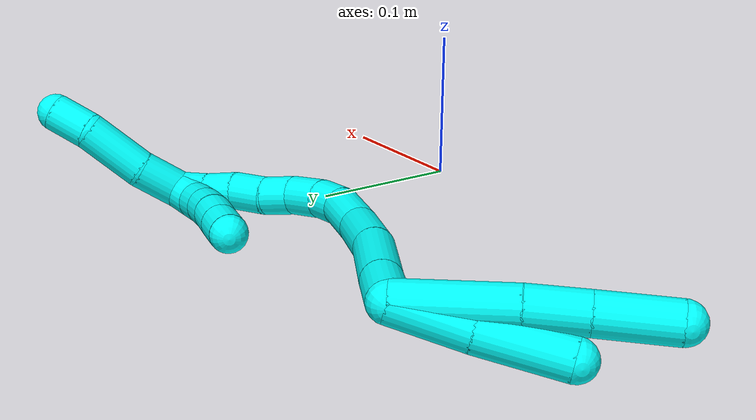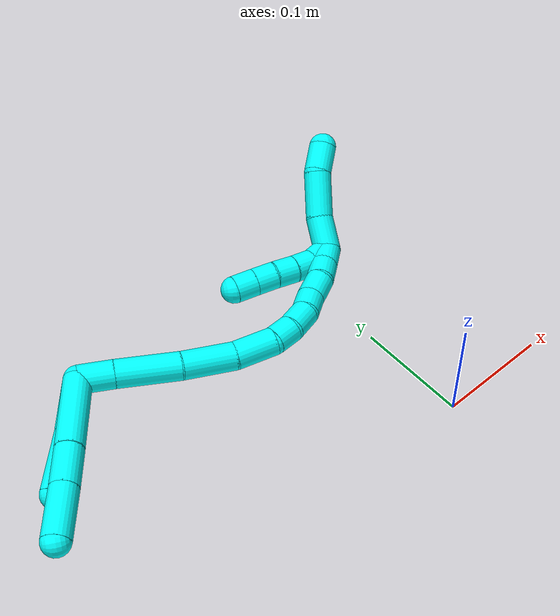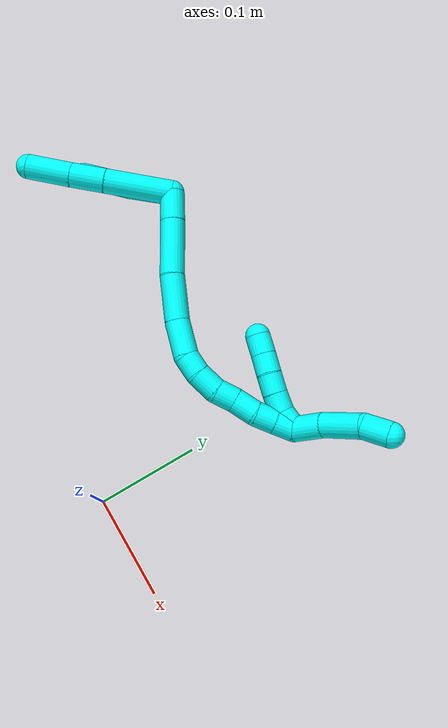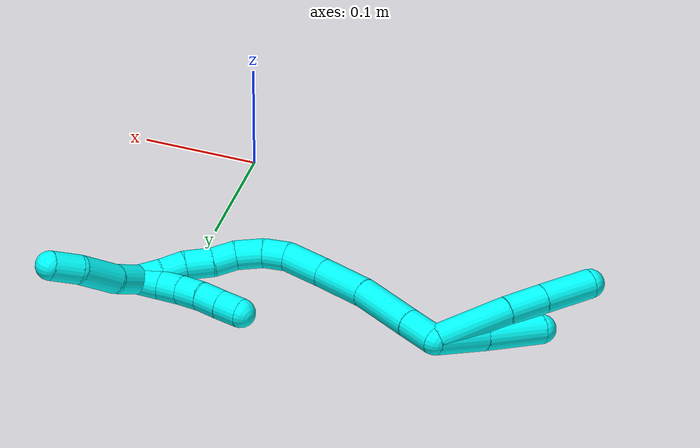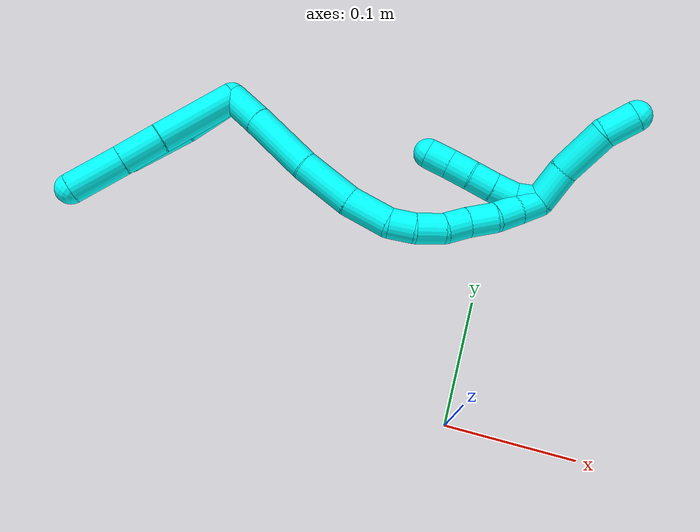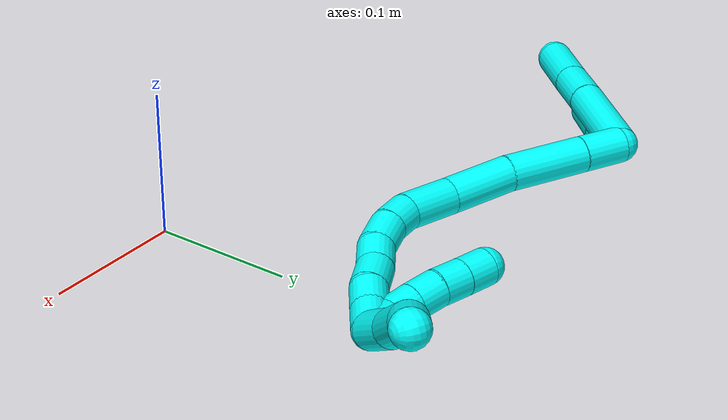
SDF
<sdf version="1.7">
 <world name="default">
  <model name="photoneo_s_sensor">
   <static>1</static>
   <pose>0 0 2 1.57079 1.57079 3.14159</pose>
   <link name="link">
    <inertial><mass>0.1</mass></inertial>
    <sensor name="sensor" type="depth">
     <update_rate>30</update_rate>
     <camera>
      <horizontal_fov>1.22</horizontal_fov>
      <image><width>1920</width><height>1200</height><format>B8G8R8</format></image>
      <clip><near>0.1</near><far>4</far></clip>
      <depth_camera><output>points</output></depth_camera>
     </camera>
     <plugin name="camera_plugin" filename="libgazebo_ros_depth_camera.so">
      <baseline>0.2</baseline>
      <alwaysOn>1</alwaysOn>
      <updateRate>0.0</updateRate>
      <cameraName>camera_ir</cameraName>
      <imageTopicName>/camera/color/image_raw</imageTopicName>
      <cameraInfoTopicName>/camera/color/camera_info</cameraInfoTopicName>
      <depthImageTopicName>/camera/depth/image_raw</depthImageTopicName>
      <depthImageCameraInfoTopicName>/camera/depth/camera_info</depthImageCameraInfoTopicName>
      <pointCloudTopicName>/camera/depth/points</pointCloudTopicName>
      <frameName>fr_optical</frameName>
      <pointCloudCutoff>0.1</pointCloudCutoff>
      <pointCloudCutoffMax>2.0</pointCloudCutoffMax>
      <distortionK1>0</distortionK1>
      <distortionK2>0</distortionK2>
      <distortionK3>0</distortionK3>
      <distortionT1>0</distortionT1>
      <distortionT2>0</distortionT2>
      <CxPrime>0</CxPrime>
      <Cx>0</Cx>
      <Cy>0</Cy>
      <focalLength>0</focalLength>
      <hackBaseline>0</hackBaseline>
     </plugin>
    </sensor>
   </link>
  </model>
  <model name="bin">
   <static>1</static>
   <link name="bottom">
    <collision name="collision-bottom">
     <pose>0 0 -0.01 0 -0 0</pose>
     <geometry><box><size>0.8 0.6 0.02</size></box></geometry>
     <surface>
      <friction><ode><mu>100</mu><mu2>100</mu2></ode></friction>
      <contact><collide_bitmask>65535</collide_bitmask></contact>
     </surface>
    </collision>
   </link>
   <link name="west_wall">
    <collision name="collision-west_wall">
     <pose>-0.41 0 0.1 0 -0 0</pose>
     <geometry><box><size>0.02 0.6 0.2</size></box></geometry>
     <surface>
      <friction><ode><mu>100</mu><mu2>100</mu2></ode></friction>
      <contact><collide_bitmask>65535</collide_bitmask></contact>
     </surface>
    </collision>
   </link>
   <link name="east_wall">
    <collision name="collision-east_wall">
     <pose>0.41 0 0.1 0 -0 0</pose>
     <geometry><box><size>0.02 0.6 0.2</size></box></geometry>
     <surface>
      <friction><ode><mu>100</mu><mu2>100</mu2></ode></friction>
      <contact><collide_bitmask>65535</collide_bitmask></contact>
     </surface>
    </collision>
   </link>
   <link name="south_wall">
    <collision name="collision-south_wall">
     <pose>0 -0.31 0.1 0 -0 0</pose>
     <geometry><box><size>0.8 0.02 0.2</size></box></geometry>
     <surface>
      <friction><ode><mu>100</mu><mu2>100</mu2></ode></friction>
      <contact><collide_bitmask>65535</collide_bitmask></contact>
     </surface>
    </collision>
   </link>
   <link name="north_wall">
    <collision name="collision-north_wall">
     <pose>0 0.31 0.1 0 -0 0</pose>
     <geometry><box><size>0.8 0.02 0.2</size></box></geometry>
     <surface>
      <friction><ode><mu>100</mu><mu2>100</mu2></ode></friction>
      <contact><collide_bitmask>65535</collide_bitmask></contact>
     </surface>
    </collision>
   </link>
  </model>
  <model name="3">
   <static>0</static>
   <link name="3">
    <collision name="collision-cylinder-e_1_2_8">
     <pose>-0.033401 0.000325 0.008189 -0.039662 -1.33019 0.031108</pose>
     <geometry><cylinder><radius>0.0125</radius><length>0.068784</length></cylinder></geometry>
     <surface>
      <friction><ode><mu>1.16</mu><mu2>1.16</mu2><slip1>0</slip1><slip2>0</slip2></ode></friction>
      <contact><ode><kp>1e+06</kp><kd>1</kd><max_vel>0</max_vel><min_depth>0.001</min_depth></ode></contact>
     </surface>
    </collision>
    <visual name="visual-cylinder-e_1_2_8">
     <pose>-0.033401 0.000325 0.008189 -0.039662 -1.33019 0.031108</pose>
     <geometry><cylinder><radius>0.0125</radius><length>0.068784</length></cylinder></geometry>
     <material><ambient>0.003922 1 0.996078 1</ambient></material>
    </visual>
    <collision name="collision-cylinder-e_2_8_9">
     <pose>-0.08378 0.001734 0.020875 -0.236601 -1.30478 0.181111</pose>
     <geometry><cylinder><radius>0.0125</radius><length>0.035192</length></cylinder></geometry>
     <surface>
      <friction><ode><mu>1.16</mu><mu2>1.16</mu2><slip1>0</slip1><slip2>0</slip2></ode></friction>
      <contact><ode><kp>1e+06</kp><kd>1</kd><max_vel>0</max_vel><min_depth>0.001</min_depth></ode></contact>
     </surface>
    </collision>
    <visual name="visual-cylinder-e_2_8_9">
     <pose>-0.08378 0.001734 0.020875 -0.236601 -1.30478 0.181111</pose>
     <geometry><cylinder><radius>0.0125</radius><length>0.035192</length></cylinder></geometry>
     <material><ambient>0.003922 1 0.996078 1</ambient></material>
    </visual>
    <collision name="collision-cylinder-e_3_9_6">
     <pose>-0.122837 0.004261 0.03169 -0.224516 -1.28531 0.168402</pose>
     <geometry><cylinder><radius>0.0125</radius><length>0.046024</length></cylinder></geometry>
     <surface>
      <friction><ode><mu>1.16</mu><mu2>1.16</mu2><slip1>0</slip1><slip2>0</slip2></ode></friction>
      <contact><ode><kp>1e+06</kp><kd>1</kd><max_vel>0</max_vel><min_depth>0.001</min_depth></ode></contact>
     </surface>
    </collision>
    <visual name="visual-cylinder-e_3_9_6">
     <pose>-0.122837 0.004261 0.03169 -0.224516 -1.28531 0.168402</pose>
     <geometry><cylinder><radius>0.0125</radius><length>0.046024</length></cylinder></geometry>
     <material><ambient>0.003922 1 0.996078 1</ambient></material>
    </visual>
    <collision name="collision-cylinder-e_1_2_10">
     <pose>-0.02119 0.006629 0.007134 -0.748784 -1.14 0.493445</pose>
     <geometry><cylinder><radius>0.0125</radius><length>0.046641</length></cylinder></geometry>
     <surface>
      <friction><ode><mu>1.16</mu><mu2>1.16</mu2><slip1>0</slip1><slip2>0</slip2></ode></friction>
      <contact><ode><kp>1e+06</kp><kd>1</kd><max_vel>0</max_vel><min_depth>0.001</min_depth></ode></contact>
     </surface>
    </collision>
    <visual name="visual-cylinder-e_1_2_10">
     <pose>-0.02119 0.006629 0.007134 -0.748784 -1.14 0.493445</pose>
     <geometry><cylinder><radius>0.0125</radius><length>0.046641</length></cylinder></geometry>
     <material><ambient>0.003922 1 0.996078 1</ambient></material>
    </visual>
    <collision name="collision-cylinder-e_2_10_5">
     <pose>-0.066585 0.018726 0.024065 -0.508926 -1.13675 0.329234</pose>
     <geometry><cylinder><radius>0.0125</radius><length>0.053359</length></cylinder></geometry>
     <surface>
      <friction><ode><mu>1.16</mu><mu2>1.16</mu2><slip1>0</slip1><slip2>0</slip2></ode></friction>
      <contact><ode><kp>1e+06</kp><kd>1</kd><max_vel>0</max_vel><min_depth>0.001</min_depth></ode></contact>
     </surface>
    </collision>
    <visual name="visual-cylinder-e_2_10_5">
     <pose>-0.066585 0.018726 0.024065 -0.508926 -1.13675 0.329234</pose>
     <geometry><cylinder><radius>0.0125</radius><length>0.053359</length></cylinder></geometry>
     <material><ambient>0.003922 1 0.996078 1</ambient></material>
    </visual>
    <collision name="collision-cylinder-e_1_2_11">
     <pose>-0.000525 4.1e-05 -0.015185 -3.13889 -0.034579 2.98575</pose>
     <geometry><cylinder><radius>0.0125</radius><length>0.030388</length></cylinder></geometry>
     <surface>
      <friction><ode><mu>1.16</mu><mu2>1.16</mu2><slip1>0</slip1><slip2>0</slip2></ode></friction>
      <contact><ode><kp>1e+06</kp><kd>1</kd><max_vel>0</max_vel><min_depth>0.001</min_depth></ode></contact>
     </surface>
    </collision>
    <visual name="visual-cylinder-e_1_2_11">
     <pose>-0.000525 4.1e-05 -0.015185 -3.13889 -0.034579 2.98575</pose>
     <geometry><cylinder><radius>0.0125</radius><length>0.030388</length></cylinder></geometry>
     <material><ambient>0.003922 1 0.996078 1</ambient></material>
    </visual>
    <collision name="collision-cylinder-e_2_11_12">
     <pose>-0.002764 0.000649 -0.058359 -3.12133 -0.061112 2.50146</pose>
     <geometry><cylinder><radius>0.0125</radius><length>0.056095</length></cylinder></geometry>
     <surface>
      <friction><ode><mu>1.16</mu><mu2>1.16</mu2><slip1>0</slip1><slip2>0</slip2></ode></friction>
      <contact><ode><kp>1e+06</kp><kd>1</kd><max_vel>0</max_vel><min_depth>0.001</min_depth></ode></contact>
     </surface>
    </collision>
    <visual name="visual-cylinder-e_2_11_12">
     <pose>-0.002764 0.000649 -0.058359 -3.12133 -0.061112 2.50146</pose>
     <geometry><cylinder><radius>0.0125</radius><length>0.056095</length></cylinder></geometry>
     <material><ambient>0.003922 1 0.996078 1</ambient></material>
    </visual>
    <collision name="collision-cylinder-e_3_12_13">
     <pose>-0.003238 0.002746 -0.109667 -3.07608 0.052964 -1.35957</pose>
     <geometry><cylinder><radius>0.0125</radius><length>0.046804</length></cylinder></geometry>
     <surface>
      <friction><ode><mu>1.16</mu><mu2>1.16</mu2><slip1>0</slip1><slip2>0</slip2></ode></friction>
      <contact><ode><kp>1e+06</kp><kd>1</kd><max_vel>0</max_vel><min_depth>0.001</min_depth></ode></contact>
     </surface>
    </collision>
    <visual name="visual-cylinder-e_3_12_13">
     <pose>-0.003238 0.002746 -0.109667 -3.07608 0.052964 -1.35957</pose>
     <geometry><cylinder><radius>0.0125</radius><length>0.046804</length></cylinder></geometry>
     <material><ambient>0.003922 1 0.996078 1</ambient></material>
    </visual>
    <collision name="collision-cylinder-e_4_13_14">
     <pose>0.001404 0.003326 -0.15093 3.08866 0.187142 2.59169</pose>
     <geometry><cylinder><radius>0.0125</radius><length>0.036577</length></cylinder></geometry>
     <surface>
      <friction><ode><mu>1.16</mu><mu2>1.16</mu2><slip1>0</slip1><slip2>0</slip2></ode></friction>
      <contact><ode><kp>1e+06</kp><kd>1</kd><max_vel>0</max_vel><min_depth>0.001</min_depth></ode></contact>
     </surface>
    </collision>
    <visual name="visual-cylinder-e_4_13_14">
     <pose>0.001404 0.003326 -0.15093 3.08866 0.187142 2.59169</pose>
     <geometry><cylinder><radius>0.0125</radius><length>0.036577</length></cylinder></geometry>
     <material><ambient>0.003922 1 0.996078 1</ambient></material>
    </visual>
    <collision name="collision-cylinder-e_5_14_15">
     <pose>0.010021 0.002395 -0.177858 -3.1393 0.525902 -3.13306</pose>
     <geometry><cylinder><radius>0.0125</radius><length>0.020775</length></cylinder></geometry>
     <surface>
      <friction><ode><mu>1.16</mu><mu2>1.16</mu2><slip1>0</slip1><slip2>0</slip2></ode></friction>
      <contact><ode><kp>1e+06</kp><kd>1</kd><max_vel>0</max_vel><min_depth>0.001</min_depth></ode></contact>
     </surface>
    </collision>
    <visual name="visual-cylinder-e_5_14_15">
     <pose>0.010021 0.002395 -0.177858 -3.1393 0.525902 -3.13306</pose>
     <geometry><cylinder><radius>0.0125</radius><length>0.020775</length></cylinder></geometry>
     <material><ambient>0.003922 1 0.996078 1</ambient></material>
    </visual>
    <collision name="collision-cylinder-e_6_15_16">
     <pose>0.023443 0.003439 -0.195432 -3.02306 0.759079 -2.84625</pose>
     <geometry><cylinder><radius>0.0125</radius><length>0.02385</length></cylinder></geometry>
     <surface>
      <friction><ode><mu>1.16</mu><mu2>1.16</mu2><slip1>0</slip1><slip2>0</slip2></ode></friction>
      <contact><ode><kp>1e+06</kp><kd>1</kd><max_vel>0</max_vel><min_depth>0.001</min_depth></ode></contact>
     </surface>
    </collision>
    <visual name="visual-cylinder-e_6_15_16">
     <pose>0.023443 0.003439 -0.195432 -3.02306 0.759079 -2.84625</pose>
     <geometry><cylinder><radius>0.0125</radius><length>0.02385</length></cylinder></geometry>
     <material><ambient>0.003922 1 0.996078 1</ambient></material>
    </visual>
    <collision name="collision-cylinder-e_7_16_17">
     <pose>0.040608 0.005762 -0.208985 -2.88545 1.05073 -2.70441</pose>
     <geometry><cylinder><radius>0.0125</radius><length>0.020645</length></cylinder></geometry>
     <surface>
      <friction><ode><mu>1.16</mu><mu2>1.16</mu2><slip1>0</slip1><slip2>0</slip2></ode></friction>
      <contact><ode><kp>1e+06</kp><kd>1</kd><max_vel>0</max_vel><min_depth>0.001</min_depth></ode></contact>
     </surface>
    </collision>
    <visual name="visual-cylinder-e_7_16_17">
     <pose>0.040608 0.005762 -0.208985 -2.88545 1.05073 -2.70441</pose>
     <geometry><cylinder><radius>0.0125</radius><length>0.020645</length></cylinder></geometry>
     <material><ambient>0.003922 1 0.996078 1</ambient></material>
    </visual>
    <collision name="collision-cylinder-e_8_17_18">
     <pose>0.059008 0.006996 -0.220996 3.13229 0.929513 3.12303</pose>
     <geometry><cylinder><radius>0.0125</radius><length>0.023567</length></cylinder></geometry>
     <surface>
      <friction><ode><mu>1.16</mu><mu2>1.16</mu2><slip1>0</slip1><slip2>0</slip2></ode></friction>
      <contact><ode><kp>1e+06</kp><kd>1</kd><max_vel>0</max_vel><min_depth>0.001</min_depth></ode></contact>
     </surface>
    </collision>
    <visual name="visual-cylinder-e_8_17_18">
     <pose>0.059008 0.006996 -0.220996 3.13229 0.929513 3.12303</pose>
     <geometry><cylinder><radius>0.0125</radius><length>0.023567</length></cylinder></geometry>
     <material><ambient>0.003922 1 0.996078 1</ambient></material>
    </visual>
    <collision name="collision-cylinder-e_9_18_19">
     <pose>0.077885 0.008185 -0.232458 -2.8646 1.11813 -2.70317</pose>
     <geometry><cylinder><radius>0.0125</radius><length>0.020983</length></cylinder></geometry>
     <surface>
      <friction><ode><mu>1.16</mu><mu2>1.16</mu2><slip1>0</slip1><slip2>0</slip2></ode></friction>
      <contact><ode><kp>1e+06</kp><kd>1</kd><max_vel>0</max_vel><min_depth>0.001</min_depth></ode></contact>
     </surface>
    </collision>
    <visual name="visual-cylinder-e_9_18_19">
     <pose>0.077885 0.008185 -0.232458 -2.8646 1.11813 -2.70317</pose>
     <geometry><cylinder><radius>0.0125</radius><length>0.020983</length></cylinder></geometry>
     <material><ambient>0.003922 1 0.996078 1</ambient></material>
    </visual>
    <collision name="collision-cylinder-e_10_19_1">
     <pose>0.09653 0.009642 -0.241152 -3.0943 1.13538 -3.06745</pose>
     <geometry><cylinder><radius>0.0125</radius><length>0.020317</length></cylinder></geometry>
     <surface>
      <friction><ode><mu>1.16</mu><mu2>1.16</mu2><slip1>0</slip1><slip2>0</slip2></ode></friction>
      <contact><ode><kp>1e+06</kp><kd>1</kd><max_vel>0</max_vel><min_depth>0.001</min_depth></ode></contact>
     </surface>
    </collision>
    <visual name="visual-cylinder-e_10_19_1">
     <pose>0.09653 0.009642 -0.241152 -3.0943 1.13538 -3.06745</pose>
     <geometry><cylinder><radius>0.0125</radius><length>0.020317</length></cylinder></geometry>
     <material><ambient>0.003922 1 0.996078 1</ambient></material>
    </visual>
    <collision name="collision-cylinder-e_1_1_20">
     <pose>0.118822 0.001434 -0.245 1.51943 0.998758 0.956154</pose>
     <geometry><cylinder><radius>0.0125</radius><length>0.031115</length></cylinder></geometry>
     <surface>
      <friction><ode><mu>1.16</mu><mu2>1.16</mu2><slip1>0</slip1><slip2>0</slip2></ode></friction>
      <contact><ode><kp>1e+06</kp><kd>1</kd><max_vel>0</max_vel><min_depth>0.001</min_depth></ode></contact>
     </surface>
    </collision>
    <visual name="visual-cylinder-e_1_1_20">
     <pose>0.118822 0.001434 -0.245 1.51943 0.998758 0.956154</pose>
     <geometry><cylinder><radius>0.0125</radius><length>0.031115</length></cylinder></geometry>
     <material><ambient>0.003922 1 0.996078 1</ambient></material>
    </visual>
    <collision name="collision-cylinder-e_2_20_21">
     <pose>0.148119 -0.020102 -0.247516 1.79182 0.878302 1.06162</pose>
     <geometry><cylinder><radius>0.0125</radius><length>0.04214</length></cylinder></geometry>
     <surface>
      <friction><ode><mu>1.16</mu><mu2>1.16</mu2><slip1>0</slip1><slip2>0</slip2></ode></friction>
      <contact><ode><kp>1e+06</kp><kd>1</kd><max_vel>0</max_vel><min_depth>0.001</min_depth></ode></contact>
     </surface>
    </collision>
    <visual name="visual-cylinder-e_2_20_21">
     <pose>0.148119 -0.020102 -0.247516 1.79182 0.878302 1.06162</pose>
     <geometry><cylinder><radius>0.0125</radius><length>0.04214</length></cylinder></geometry>
     <material><ambient>0.003922 1 0.996078 1</ambient></material>
    </visual>
    <collision name="collision-cylinder-e_3_21_4">
     <pose>0.175253 -0.038893 -0.255714 2.31792 0.955063 1.73945</pose>
     <geometry><cylinder><radius>0.0125</radius><length>0.026745</length></cylinder></geometry>
     <surface>
      <friction><ode><mu>1.16</mu><mu2>1.16</mu2><slip1>0</slip1><slip2>0</slip2></ode></friction>
      <contact><ode><kp>1e+06</kp><kd>1</kd><max_vel>0</max_vel><min_depth>0.001</min_depth></ode></contact>
     </surface>
    </collision>
    <visual name="visual-cylinder-e_3_21_4">
     <pose>0.175253 -0.038893 -0.255714 2.31792 0.955063 1.73945</pose>
     <geometry><cylinder><radius>0.0125</radius><length>0.026745</length></cylinder></geometry>
     <material><ambient>0.003922 1 0.996078 1</ambient></material>
    </visual>
    <collision name="collision-cylinder-e_1_1_22">
     <pose>0.100708 0.011101 -0.236883 -0.14591 -0.527426 0.039461</pose>
     <geometry><cylinder><radius>0.0125</radius><length>0.02</length></cylinder></geometry>
     <surface>
      <friction><ode><mu>1.16</mu><mu2>1.16</mu2><slip1>0</slip1><slip2>0</slip2></ode></friction>
      <contact><ode><kp>1e+06</kp><kd>1</kd><max_vel>0</max_vel><min_depth>0.001</min_depth></ode></contact>
     </surface>
    </collision>
    <visual name="visual-cylinder-e_1_1_22">
     <pose>0.100708 0.011101 -0.236883 -0.14591 -0.527426 0.039461</pose>
     <geometry><cylinder><radius>0.0125</radius><length>0.02</length></cylinder></geometry>
     <material><ambient>0.003922 1 0.996078 1</ambient></material>
    </visual>
    <collision name="collision-cylinder-e_2_22_23">
     <pose>0.092775 0.011472 -0.218804 0.092644 -0.294221 -0.013738</pose>
     <geometry><cylinder><radius>0.0125</radius><length>0.02</length></cylinder></geometry>
     <surface>
      <friction><ode><mu>1.16</mu><mu2>1.16</mu2><slip1>0</slip1><slip2>0</slip2></ode></friction>
      <contact><ode><kp>1e+06</kp><kd>1</kd><max_vel>0</max_vel><min_depth>0.001</min_depth></ode></contact>
     </surface>
    </collision>
    <visual name="visual-cylinder-e_2_22_23">
     <pose>0.092775 0.011472 -0.218804 0.092644 -0.294221 -0.013738</pose>
     <geometry><cylinder><radius>0.0125</radius><length>0.02</length></cylinder></geometry>
     <material><ambient>0.003922 1 0.996078 1</ambient></material>
    </visual>
    <collision name="collision-cylinder-e_3_23_24">
     <pose>0.087606 0.00981 -0.199567 0.079865 -0.228939 -0.009187</pose>
     <geometry><cylinder><radius>0.0125</radius><length>0.02</length></cylinder></geometry>
     <surface>
      <friction><ode><mu>1.16</mu><mu2>1.16</mu2><slip1>0</slip1><slip2>0</slip2></ode></friction>
      <contact><ode><kp>1e+06</kp><kd>1</kd><max_vel>0</max_vel><min_depth>0.001</min_depth></ode></contact>
     </surface>
    </collision>
    <visual name="visual-cylinder-e_3_23_24">
     <pose>0.087606 0.00981 -0.199567 0.079865 -0.228939 -0.009187</pose>
     <geometry><cylinder><radius>0.0125</radius><length>0.02</length></cylinder></geometry>
     <material><ambient>0.003922 1 0.996078 1</ambient></material>
    </visual>
    <collision name="collision-cylinder-e_4_24_25">
     <pose>0.08338 0.009285 -0.180055 -0.025678 -0.196869 0.002536</pose>
     <geometry><cylinder><radius>0.0125</radius><length>0.02</length></cylinder></geometry>
     <surface>
      <friction><ode><mu>1.16</mu><mu2>1.16</mu2><slip1>0</slip1><slip2>0</slip2></ode></friction>
      <contact><ode><kp>1e+06</kp><kd>1</kd><max_vel>0</max_vel><min_depth>0.001</min_depth></ode></contact>
     </surface>
    </collision>
    <visual name="visual-cylinder-e_4_24_25">
     <pose>0.08338 0.009285 -0.180055 -0.025678 -0.196869 0.002536</pose>
     <geometry><cylinder><radius>0.0125</radius><length>0.02</length></cylinder></geometry>
     <material><ambient>0.003922 1 0.996078 1</ambient></material>
    </visual>
    <collision name="collision-cylinder-e_5_25_3">
     <pose>0.07926 0.00974 -0.160491 -0.020872 -0.218146 0.002286</pose>
     <geometry><cylinder><radius>0.0125</radius><length>0.02</length></cylinder></geometry>
     <surface>
      <friction><ode><mu>1.16</mu><mu2>1.16</mu2><slip1>0</slip1><slip2>0</slip2></ode></friction>
      <contact><ode><kp>1e+06</kp><kd>1</kd><max_vel>0</max_vel><min_depth>0.001</min_depth></ode></contact>
     </surface>
    </collision>
    <visual name="visual-cylinder-e_5_25_3">
     <pose>0.07926 0.00974 -0.160491 -0.020872 -0.218146 0.002286</pose>
     <geometry><cylinder><radius>0.0125</radius><length>0.02</length></cylinder></geometry>
     <material><ambient>0.003922 1 0.996078 1</ambient></material>
    </visual>
    <collision name="collision-sphere-3">
     <pose>0.077096 0.009944 -0.15073 0 -0 0</pose>
     <geometry><sphere><radius>0.0125</radius></sphere></geometry>
     <surface>
      <friction><ode><mu>1.16</mu><mu2>1.16</mu2><slip1>0</slip1><slip2>0</slip2></ode></friction>
      <contact><ode><kp>1e+06</kp><kd>1</kd><max_vel>0</max_vel><min_depth>0.001</min_depth></ode></contact>
     </surface>
    </collision>
    <visual name="visual-sphere-3">
     <pose>0.077096 0.009944 -0.15073 0 -0 0</pose>
     <geometry><sphere><radius>0.0125</radius></sphere></geometry>
     <material><ambient>0.003922 1 0.996078 1</ambient></material>
    </visual>
    <collision name="collision-sphere-25">
     <pose>0.081424 0.009537 -0.170252 0 -0 0</pose>
     <geometry><sphere><radius>0.0125</radius></sphere></geometry>
     <surface>
      <friction><ode><mu>1.16</mu><mu2>1.16</mu2><slip1>0</slip1><slip2>0</slip2></ode></friction>
      <contact><ode><kp>1e+06</kp><kd>1</kd><max_vel>0</max_vel><min_depth>0.001</min_depth></ode></contact>
     </surface>
    </collision>
    <visual name="visual-sphere-25">
     <pose>0.081424 0.009537 -0.170252 0 -0 0</pose>
     <geometry><sphere><radius>0.0125</radius></sphere></geometry>
     <material><ambient>0.003922 1 0.996078 1</ambient></material>
    </visual>
    <collision name="collision-sphere-24">
     <pose>0.085336 0.009033 -0.189859 0 -0 0</pose>
     <geometry><sphere><radius>0.0125</radius></sphere></geometry>
     <surface>
      <friction><ode><mu>1.16</mu><mu2>1.16</mu2><slip1>0</slip1><slip2>0</slip2></ode></friction>
      <contact><ode><kp>1e+06</kp><kd>1</kd><max_vel>0</max_vel><min_depth>0.001</min_depth></ode></contact>
     </surface>
    </collision>
    <visual name="visual-sphere-24">
     <pose>0.085336 0.009033 -0.189859 0 -0 0</pose>
     <geometry><sphere><radius>0.0125</radius></sphere></geometry>
     <material><ambient>0.003922 1 0.996078 1</ambient></material>
    </visual>
    <collision name="collision-sphere-23">
     <pose>0.089875 0.010587 -0.209275 0 -0 0</pose>
     <geometry><sphere><radius>0.0125</radius></sphere></geometry>
     <surface>
      <friction><ode><mu>1.16</mu><mu2>1.16</mu2><slip1>0</slip1><slip2>0</slip2></ode></friction>
      <contact><ode><kp>1e+06</kp><kd>1</kd><max_vel>0</max_vel><min_depth>0.001</min_depth></ode></contact>
     </surface>
    </collision>
    <visual name="visual-sphere-23">
     <pose>0.089875 0.010587 -0.209275 0 -0 0</pose>
     <geometry><sphere><radius>0.0125</radius></sphere></geometry>
     <material><ambient>0.003922 1 0.996078 1</ambient></material>
    </visual>
    <collision name="collision-sphere-22">
     <pose>0.095675 0.012358 -0.228334 0 -0 0</pose>
     <geometry><sphere><radius>0.0125</radius></sphere></geometry>
     <surface>
      <friction><ode><mu>1.16</mu><mu2>1.16</mu2><slip1>0</slip1><slip2>0</slip2></ode></friction>
      <contact><ode><kp>1e+06</kp><kd>1</kd><max_vel>0</max_vel><min_depth>0.001</min_depth></ode></contact>
     </surface>
    </collision>
    <visual name="visual-sphere-22">
     <pose>0.095675 0.012358 -0.228334 0 -0 0</pose>
     <geometry><sphere><radius>0.0125</radius></sphere></geometry>
     <material><ambient>0.003922 1 0.996078 1</ambient></material>
    </visual>
    <collision name="collision-sphere-4">
     <pose>0.186169 -0.044559 -0.260962 0 -0 0</pose>
     <geometry><sphere><radius>0.0125</radius></sphere></geometry>
     <surface>
      <friction><ode><mu>1.16</mu><mu2>1.16</mu2><slip1>0</slip1><slip2>0</slip2></ode></friction>
      <contact><ode><kp>1e+06</kp><kd>1</kd><max_vel>0</max_vel><min_depth>0.001</min_depth></ode></contact>
     </surface>
    </collision>
    <visual name="visual-sphere-4">
     <pose>0.186169 -0.044559 -0.260962 0 -0 0</pose>
     <geometry><sphere><radius>0.0125</radius></sphere></geometry>
     <material><ambient>0.003922 1 0.996078 1</ambient></material>
    </visual>
    <collision name="collision-sphere-21">
     <pose>0.164336 -0.033227 -0.250465 0 -0 0</pose>
     <geometry><sphere><radius>0.0125</radius></sphere></geometry>
     <surface>
      <friction><ode><mu>1.16</mu><mu2>1.16</mu2><slip1>0</slip1><slip2>0</slip2></ode></friction>
      <contact><ode><kp>1e+06</kp><kd>1</kd><max_vel>0</max_vel><min_depth>0.001</min_depth></ode></contact>
     </surface>
    </collision>
    <visual name="visual-sphere-21">
     <pose>0.164336 -0.033227 -0.250465 0 -0 0</pose>
     <geometry><sphere><radius>0.0125</radius></sphere></geometry>
     <material><ambient>0.003922 1 0.996078 1</ambient></material>
    </visual>
    <collision name="collision-sphere-20">
     <pose>0.131903 -0.006977 -0.244567 0 -0 0</pose>
     <geometry><sphere><radius>0.0125</radius></sphere></geometry>
     <surface>
      <friction><ode><mu>1.16</mu><mu2>1.16</mu2><slip1>0</slip1><slip2>0</slip2></ode></friction>
      <contact><ode><kp>1e+06</kp><kd>1</kd><max_vel>0</max_vel><min_depth>0.001</min_depth></ode></contact>
     </surface>
    </collision>
    <visual name="visual-sphere-20">
     <pose>0.131903 -0.006977 -0.244567 0 -0 0</pose>
     <geometry><sphere><radius>0.0125</radius></sphere></geometry>
     <material><ambient>0.003922 1 0.996078 1</ambient></material>
    </visual>
    <collision name="collision-sphere-5">
     <pose>-0.090791 0.024193 0.033863 0 -0 0</pose>
     <geometry><sphere><radius>0.0125</radius></sphere></geometry>
     <surface>
      <friction><ode><mu>1.16</mu><mu2>1.16</mu2><slip1>0</slip1><slip2>0</slip2></ode></friction>
      <contact><ode><kp>1e+06</kp><kd>1</kd><max_vel>0</max_vel><min_depth>0.001</min_depth></ode></contact>
     </surface>
    </collision>
    <visual name="visual-sphere-5">
     <pose>-0.090791 0.024193 0.033863 0 -0 0</pose>
     <geometry><sphere><radius>0.0125</radius></sphere></geometry>
     <material><ambient>0.003922 1 0.996078 1</ambient></material>
    </visual>
    <collision name="collision-sphere-10">
     <pose>-0.04238 0.013259 0.014267 0 -0 0</pose>
     <geometry><sphere><radius>0.0125</radius></sphere></geometry>
     <surface>
      <friction><ode><mu>1.16</mu><mu2>1.16</mu2><slip1>0</slip1><slip2>0</slip2></ode></friction>
      <contact><ode><kp>1e+06</kp><kd>1</kd><max_vel>0</max_vel><min_depth>0.001</min_depth></ode></contact>
     </surface>
    </collision>
    <visual name="visual-sphere-10">
     <pose>-0.04238 0.013259 0.014267 0 -0 0</pose>
     <geometry><sphere><radius>0.0125</radius></sphere></geometry>
     <material><ambient>0.003922 1 0.996078 1</ambient></material>
    </visual>
    <collision name="collision-sphere-6">
     <pose>-0.144918 0.005704 0.038008 0 -0 0</pose>
     <geometry><sphere><radius>0.0125</radius></sphere></geometry>
     <surface>
      <friction><ode><mu>1.16</mu><mu2>1.16</mu2><slip1>0</slip1><slip2>0</slip2></ode></friction>
      <contact><ode><kp>1e+06</kp><kd>1</kd><max_vel>0</max_vel><min_depth>0.001</min_depth></ode></contact>
     </surface>
    </collision>
    <visual name="visual-sphere-6">
     <pose>-0.144918 0.005704 0.038008 0 -0 0</pose>
     <geometry><sphere><radius>0.0125</radius></sphere></geometry>
     <material><ambient>0.003922 1 0.996078 1</ambient></material>
    </visual>
    <collision name="collision-sphere-9">
     <pose>-0.100757 0.002818 0.025371 0 -0 0</pose>
     <geometry><sphere><radius>0.0125</radius></sphere></geometry>
     <surface>
      <friction><ode><mu>1.16</mu><mu2>1.16</mu2><slip1>0</slip1><slip2>0</slip2></ode></friction>
      <contact><ode><kp>1e+06</kp><kd>1</kd><max_vel>0</max_vel><min_depth>0.001</min_depth></ode></contact>
     </surface>
    </collision>
    <visual name="visual-sphere-9">
     <pose>-0.100757 0.002818 0.025371 0 -0 0</pose>
     <geometry><sphere><radius>0.0125</radius></sphere></geometry>
     <material><ambient>0.003922 1 0.996078 1</ambient></material>
    </visual>
    <collision name="collision-sphere-2">
     <geometry><sphere><radius>0.0125</radius></sphere></geometry>
     <surface>
      <friction><ode><mu>1.16</mu><mu2>1.16</mu2><slip1>0</slip1><slip2>0</slip2></ode></friction>
      <contact><ode><kp>1e+06</kp><kd>1</kd><max_vel>0</max_vel><min_depth>0.001</min_depth></ode></contact>
     </surface>
    </collision>
    <visual name="visual-sphere-2">
     <geometry><sphere><radius>0.0125</radius></sphere></geometry>
     <material><ambient>0.003922 1 0.996078 1</ambient></material>
    </visual>
    <collision name="collision-sphere-19">
     <pose>0.08732 0.00944 -0.236872 0 -0 0</pose>
     <geometry><sphere><radius>0.0125</radius></sphere></geometry>
     <surface>
      <friction><ode><mu>1.16</mu><mu2>1.16</mu2><slip1>0</slip1><slip2>0</slip2></ode></friction>
      <contact><ode><kp>1e+06</kp><kd>1</kd><max_vel>0</max_vel><min_depth>0.001</min_depth></ode></contact>
     </surface>
    </collision>
    <visual name="visual-sphere-19">
     <pose>0.08732 0.00944 -0.236872 0 -0 0</pose>
     <geometry><sphere><radius>0.0125</radius></sphere></geometry>
     <material><ambient>0.003922 1 0.996078 1</ambient></material>
    </visual>
    <collision name="collision-sphere-8">
     <pose>-0.066803 0.00065 0.016378 0 -0 0</pose>
     <geometry><sphere><radius>0.0125</radius></sphere></geometry>
     <surface>
      <friction><ode><mu>1.16</mu><mu2>1.16</mu2><slip1>0</slip1><slip2>0</slip2></ode></friction>
      <contact><ode><kp>1e+06</kp><kd>1</kd><max_vel>0</max_vel><min_depth>0.001</min_depth></ode></contact>
     </surface>
    </collision>
    <visual name="visual-sphere-8">
     <pose>-0.066803 0.00065 0.016378 0 -0 0</pose>
     <geometry><sphere><radius>0.0125</radius></sphere></geometry>
     <material><ambient>0.003922 1 0.996078 1</ambient></material>
    </visual>
    <collision name="collision-sphere-11">
     <pose>-0.001051 8.2e-05 -0.03037 0 -0 0</pose>
     <geometry><sphere><radius>0.0125</radius></sphere></geometry>
     <surface>
      <friction><ode><mu>1.16</mu><mu2>1.16</mu2><slip1>0</slip1><slip2>0</slip2></ode></friction>
      <contact><ode><kp>1e+06</kp><kd>1</kd><max_vel>0</max_vel><min_depth>0.001</min_depth></ode></contact>
     </surface>
    </collision>
    <visual name="visual-sphere-11">
     <pose>-0.001051 8.2e-05 -0.03037 0 -0 0</pose>
     <geometry><sphere><radius>0.0125</radius></sphere></geometry>
     <material><ambient>0.003922 1 0.996078 1</ambient></material>
    </visual>
    <collision name="collision-sphere-12">
     <pose>-0.004477 0.001216 -0.086348 0 -0 0</pose>
     <geometry><sphere><radius>0.0125</radius></sphere></geometry>
     <surface>
      <friction><ode><mu>1.16</mu><mu2>1.16</mu2><slip1>0</slip1><slip2>0</slip2></ode></friction>
      <contact><ode><kp>1e+06</kp><kd>1</kd><max_vel>0</max_vel><min_depth>0.001</min_depth></ode></contact>
     </surface>
    </collision>
    <visual name="visual-sphere-12">
     <pose>-0.004477 0.001216 -0.086348 0 -0 0</pose>
     <geometry><sphere><radius>0.0125</radius></sphere></geometry>
     <material><ambient>0.003922 1 0.996078 1</ambient></material>
    </visual>
    <collision name="collision-sphere-13">
     <pose>-0.001999 0.004276 -0.132986 0 -0 0</pose>
     <geometry><sphere><radius>0.0125</radius></sphere></geometry>
     <surface>
      <friction><ode><mu>1.16</mu><mu2>1.16</mu2><slip1>0</slip1><slip2>0</slip2></ode></friction>
      <contact><ode><kp>1e+06</kp><kd>1</kd><max_vel>0</max_vel><min_depth>0.001</min_depth></ode></contact>
     </surface>
    </collision>
    <visual name="visual-sphere-13">
     <pose>-0.001999 0.004276 -0.132986 0 -0 0</pose>
     <geometry><sphere><radius>0.0125</radius></sphere></geometry>
     <material><ambient>0.003922 1 0.996078 1</ambient></material>
    </visual>
    <collision name="collision-sphere-14">
     <pose>0.004807 0.002375 -0.168874 0 -0 0</pose>
     <geometry><sphere><radius>0.0125</radius></sphere></geometry>
     <surface>
      <friction><ode><mu>1.16</mu><mu2>1.16</mu2><slip1>0</slip1><slip2>0</slip2></ode></friction>
      <contact><ode><kp>1e+06</kp><kd>1</kd><max_vel>0</max_vel><min_depth>0.001</min_depth></ode></contact>
     </surface>
    </collision>
    <visual name="visual-sphere-14">
     <pose>0.004807 0.002375 -0.168874 0 -0 0</pose>
     <geometry><sphere><radius>0.0125</radius></sphere></geometry>
     <material><ambient>0.003922 1 0.996078 1</ambient></material>
    </visual>
    <collision name="collision-sphere-15">
     <pose>0.015235 0.002416 -0.186842 0 -0 0</pose>
     <geometry><sphere><radius>0.0125</radius></sphere></geometry>
     <surface>
      <friction><ode><mu>1.16</mu><mu2>1.16</mu2><slip1>0</slip1><slip2>0</slip2></ode></friction>
      <contact><ode><kp>1e+06</kp><kd>1</kd><max_vel>0</max_vel><min_depth>0.001</min_depth></ode></contact>
     </surface>
    </collision>
    <visual name="visual-sphere-15">
     <pose>0.015235 0.002416 -0.186842 0 -0 0</pose>
     <geometry><sphere><radius>0.0125</radius></sphere></geometry>
     <material><ambient>0.003922 1 0.996078 1</ambient></material>
    </visual>
    <collision name="collision-sphere-16">
     <pose>0.03165 0.004462 -0.204023 0 -0 0</pose>
     <geometry><sphere><radius>0.0125</radius></sphere></geometry>
     <surface>
      <friction><ode><mu>1.16</mu><mu2>1.16</mu2><slip1>0</slip1><slip2>0</slip2></ode></friction>
      <contact><ode><kp>1e+06</kp><kd>1</kd><max_vel>0</max_vel><min_depth>0.001</min_depth></ode></contact>
     </surface>
    </collision>
    <visual name="visual-sphere-16">
     <pose>0.03165 0.004462 -0.204023 0 -0 0</pose>
     <geometry><sphere><radius>0.0125</radius></sphere></geometry>
     <material><ambient>0.003922 1 0.996078 1</ambient></material>
    </visual>
    <collision name="collision-sphere-17">
     <pose>0.049566 0.007061 -0.213947 0 -0 0</pose>
     <geometry><sphere><radius>0.0125</radius></sphere></geometry>
     <surface>
      <friction><ode><mu>1.16</mu><mu2>1.16</mu2><slip1>0</slip1><slip2>0</slip2></ode></friction>
      <contact><ode><kp>1e+06</kp><kd>1</kd><max_vel>0</max_vel><min_depth>0.001</min_depth></ode></contact>
     </surface>
    </collision>
    <visual name="visual-sphere-17">
     <pose>0.049566 0.007061 -0.213947 0 -0 0</pose>
     <geometry><sphere><radius>0.0125</radius></sphere></geometry>
     <material><ambient>0.003922 1 0.996078 1</ambient></material>
    </visual>
    <collision name="collision-sphere-18">
     <pose>0.06845 0.00693 -0.228045 0 -0 0</pose>
     <geometry><sphere><radius>0.0125</radius></sphere></geometry>
     <surface>
      <friction><ode><mu>1.16</mu><mu2>1.16</mu2><slip1>0</slip1><slip2>0</slip2></ode></friction>
      <contact><ode><kp>1e+06</kp><kd>1</kd><max_vel>0</max_vel><min_depth>0.001</min_depth></ode></contact>
     </surface>
    </collision>
    <visual name="visual-sphere-18">
     <pose>0.06845 0.00693 -0.228045 0 -0 0</pose>
     <geometry><sphere><radius>0.0125</radius></sphere></geometry>
     <material><ambient>0.003922 1 0.996078 1</ambient></material>
    </visual>
    <collision name="collision-sphere-1">
     <pose>0.105741 0.009845 -0.245432 0 -0 0</pose>
     <geometry><sphere><radius>0.0125</radius></sphere></geometry>
     <surface>
      <friction><ode><mu>1.16</mu><mu2>1.16</mu2><slip1>0</slip1><slip2>0</slip2></ode></friction>
      <contact><ode><kp>1e+06</kp><kd>1</kd><max_vel>0</max_vel><min_depth>0.001</min_depth></ode></contact>
     </surface>
    </collision>
    <visual name="visual-sphere-1">
     <pose>0.105741 0.009845 -0.245432 0 -0 0</pose>
     <geometry><sphere><radius>0.0125</radius></sphere></geometry>
     <material><ambient>0.003922 1 0.996078 1</ambient></material>
    </visual>
    <inertial>
     <pose>0.019174 0.002459 -0.109973 0 -0 0</pose>
     <mass>0.75</mass>
     <inertia><ixx>1.4e-05</ixx><ixy>0</ixy><ixz>0</ixz><iyy>0.000128</iyy><iyz>0</iyz><izz>4.1e-05</izz></inertia>
    </inertial>
   </link>
   <pose>-0.232059 0.211826 0.033162 -1.53557 0.019155 1.10136</pose>
  </model>
 </world>
</sdf>
